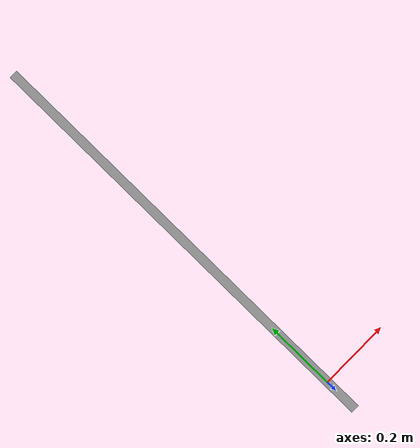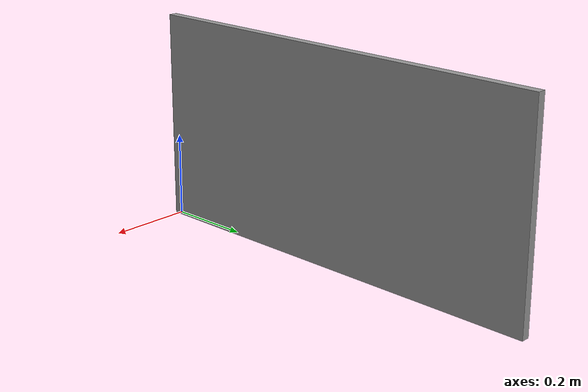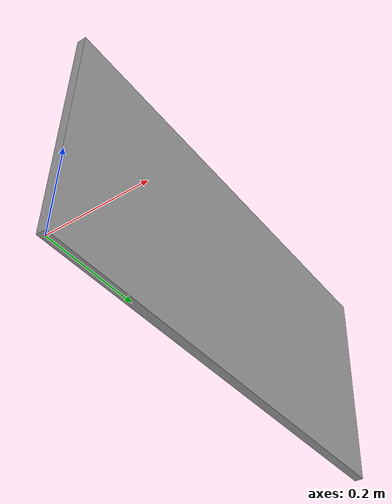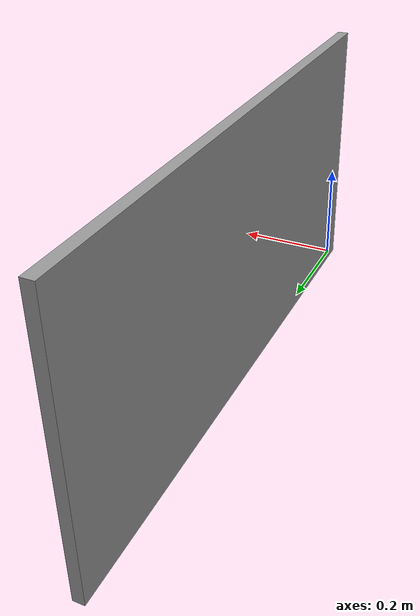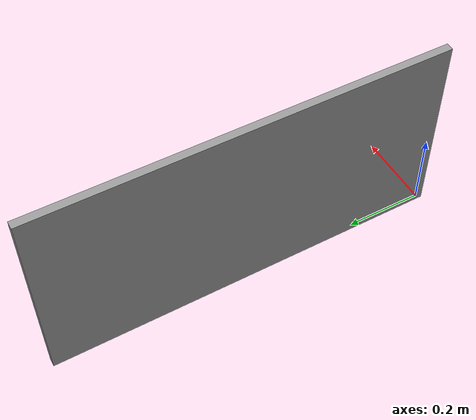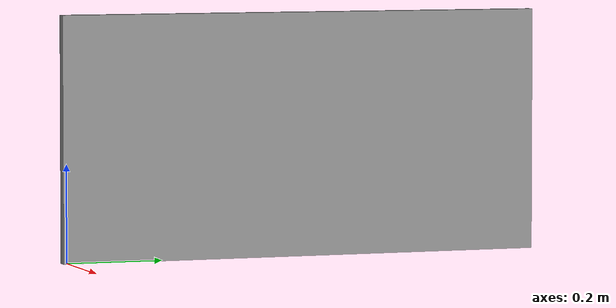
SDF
<?xml version='1.0'?>
<sdf version='1.6'>
  <model name='wall_obstacle'>
    <pose frame=''>0 0.5 0 0 -0 0</pose>
    <link name='Wall_0'>
      <collision name='Wall_0_Collision'>
        <geometry>
          <box>
            <size>1.02 0.02 0.5</size>
          </box>
        </geometry>
        <pose frame=''>0 0 0.25 0 -0 0</pose>
      </collision>
      <visual name='Wall_0_Visual'>
        <pose frame=''>0 0 0.25 0 -0 0</pose>
        <geometry>
          <box>
            <size>1.02 0.02 0.5</size>
          </box>
        </geometry>
        <material>
          <script>
            <uri>file://media/materials/scripts/gazebo.material</uri>
            <name>Gazebo/Grey</name>
          </script>
          <ambient>1 1 1 1</ambient>
        </material>
      </visual>
      <pose frame=''>0 0 0 0 -0 1.5708</pose>
    </link>
    <static>1</static>
  </model>
</sdf>
